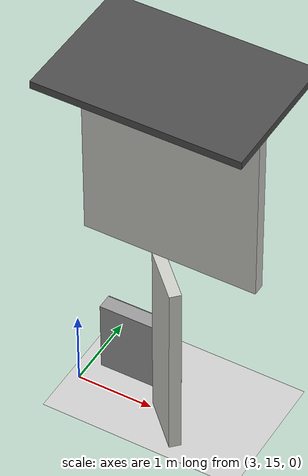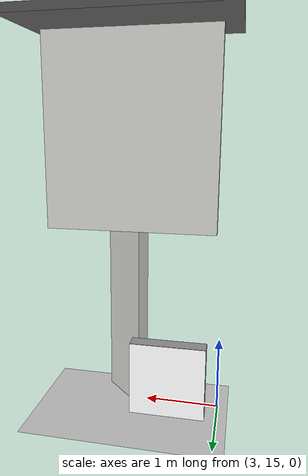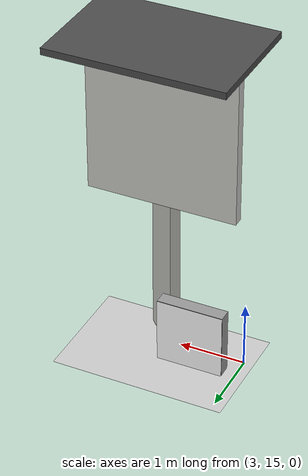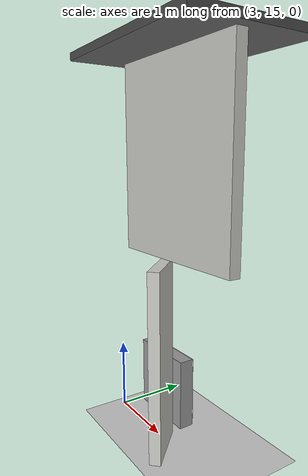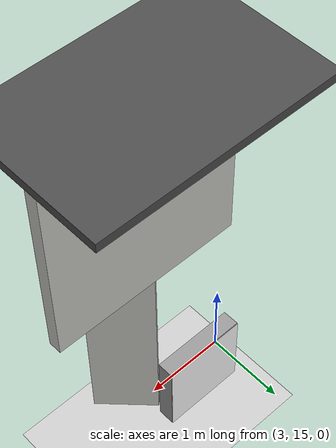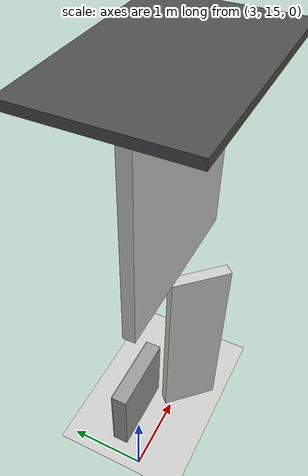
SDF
<sdf version="1.6">
 <world name="default">
  <model name="ground_plane">
   <static>1</static>
   <link name="link">
    <collision name="collision">
     <geometry><plane><normal>0 0 1</normal><size>100 100</size></plane></geometry>
     <surface>
      <contact><collide_bitmask>65535</collide_bitmask></contact>
      <friction><ode><mu>100</mu><mu2>50</mu2></ode></friction>
     </surface>
    </collision>
    <visual name="visual">
     <cast_shadows>0</cast_shadows>
     <geometry><plane><normal>0 0 1</normal><size>100 100</size></plane></geometry>
     <material>
      <script><uri>file://media/materials/scripts/gazebo.material</uri><name>Gazebo/Grey</name></script>
     </material>
    </visual>
   </link>
  </model>
  <model name="asphalt_plane">
   <static>1</static>
   <link name="link">
    <collision name="collision"><geometry><box><size>18.0246 12.9845 0.1</size></box></geometry></collision>
    <visual name="visual">
     <cast_shadows>0</cast_shadows>
     <geometry><box><size>18.0246 12.9845 0.1</size></box></geometry>
     <material>
      <script>
       <uri>model://asphalt_plane/materials/scripts</uri>
       <uri>model://asphalt_plane/materials/textures</uri>
       <name>vrc/asphalt</name>
      </script>
     </material>
    </visual>
   </link>
   <pose>0.009253 12.617 5.05625 0 -0 0</pose>
  </model>
  <model name="Indoor_Scenario1">
   <pose>0.016123 12.6195 0 0 -0 0</pose>
   <link name="Wall_48">
    <collision name="Wall_48_Collision">
     <geometry><box><size>0.75 0.15 2.5</size></box></geometry>
     <pose>0 0 1.25 0 -0 0</pose>
    </collision>
    <visual name="Wall_48_Visual">
     <pose>0 0 1.25 0 -0 0</pose>
     <geometry><box><size>0.75 0.15 2.5</size></box></geometry>
     <material>
      <script><uri>file://media/materials/scripts/gazebo.material</uri><name>Gazebo/CeilingTiled</name></script>
      <ambient>1 1 1 1</ambient>
     </material>
     <meta><layer>0</layer></meta>
    </visual>
    <pose>4.28416 2.24221 0 0 -0 2.35619</pose>
   </link>
   <link name="Wall_93">
    <collision name="Wall_93_Collision">
     <geometry><box><size>2.25 0.15 2.5</size></box></geometry>
     <pose>0 0 1.25 0 -0 0</pose>
    </collision>
    <visual name="Wall_93_Visual">
     <pose>0 0 1.25 0 -0 0</pose>
     <geometry><box><size>2.25 0.15 2.5</size></box></geometry>
     <material>
      <script><uri>file://media/materials/scripts/gazebo.material</uri><name>Gazebo/CeilingTiled</name></script>
      <ambient>1 1 1 1</ambient>
     </material>
     <meta><layer>1</layer></meta>
    </visual>
    <pose>4.18851 2.53292 2.5 0 -0 0</pose>
   </link>
   <static>1</static>
  </model>
  <model name="marker38_box">
   <link name="marker">
    <inertial>
     <mass>0.1</mass>
     <inertia><ixx>0</ixx><ixy>0</ixy><ixz>0</ixz><iyy>0</iyy><iyz>0</iyz><izz>0</izz></inertia>
    </inertial>
    <self_collide>1</self_collide>
    <pose>0 0 0.25 0 -0 0</pose>
    <visual name="visual">
     <geometry><box><size>1 0.001 1</size></box></geometry>
     <material>
      <script>
       <uri>/root/model_editor_models/marker38/material/scripts</uri>
       <uri>/root/model_editor_models/marker38/material/textures</uri>
       <name>Aruco/marker38</name>
      </script>
      <shader type="pixel"><normal_map>__default__</normal_map></shader>
      <emissive>0 0 0 1</emissive>
      <ambient>1 1 1 1</ambient>
      <diffuse>1 1 1 1</diffuse>
      <specular>0 0 0 1</specular>
     </material>
    </visual>
    <collision name="collision">
     <geometry><box><size>1 0.001 1</size></box></geometry>
     <surface>
      <friction>
       <ode><mu>1</mu><mu2>1</mu2><fdir1>0 0 0</fdir1><slip1>0</slip1><slip2>0</slip2></ode>
       <torsional>
        <coefficient>1</coefficient>
        <patch_radius>0</patch_radius>
        <surface_radius>0</surface_radius>
        <use_patch_radius>1</use_patch_radius>
        <ode><slip>0</slip></ode>
       </torsional>
      </friction>
      <bounce><restitution_coefficient>0</restitution_coefficient><threshold>1e+06</threshold></bounce>
      <contact>
       <collide_without_contact>0</collide_without_contact>
       <collide_without_contact_bitmask>1</collide_without_contact_bitmask>
       <collide_bitmask>1</collide_bitmask>
       <ode>
        <soft_cfm>0</soft_cfm>
        <soft_erp>0.2</soft_erp>
        <kp>1e+13</kp>
        <kd>1</kd>
        <max_vel>0.01</max_vel>
        <min_depth>0</min_depth>
       </ode>
       <bullet>
        <split_impulse>1</split_impulse>
        <split_impulse_penetration_threshold>-0.01</split_impulse_penetration_threshold>
        <soft_cfm>0</soft_cfm>
        <soft_erp>0.2</soft_erp>
        <kp>1e+13</kp>
        <kd>1</kd>
       </bullet>
      </contact>
     </surface>
    </collision>
   </link>
   <link name="link_1">
    <inertial>
     <mass>1</mass>
     <inertia>
      <ixx>0.166667</ixx>
      <ixy>0</ixy>
      <ixz>0</ixz>
      <iyy>0.166667</iyy>
      <iyz>0</iyz>
      <izz>0.166667</izz>
     </inertia>
    </inertial>
    <pose>0 0.11 0.25 0 -0 0</pose>
    <visual name="visual">
     <geometry><box><size>1 0.2 1</size></box></geometry>
     <material>
      <lighting>1</lighting>
      <script><uri>file://media/materials/scripts/gazebo.material</uri><name>Gazebo/Grey</name></script>
      <shader type="pixel"><normal_map>__default__</normal_map></shader>
      <emissive>0 0 0 1</emissive>
      <ambient>0.3 0.3 0.3 1</ambient>
      <diffuse>0.7 0.7 0.7 1</diffuse>
      <specular>0.01 0.01 0.01 1</specular>
     </material>
    </visual>
    <collision name="collision">
     <geometry><box><size>1 0.2 1</size></box></geometry>
     <surface>
      <friction>
       <ode><mu>1</mu><mu2>1</mu2><fdir1>0 0 0</fdir1><slip1>0</slip1><slip2>0</slip2></ode>
       <torsional>
        <coefficient>1</coefficient>
        <patch_radius>0</patch_radius>
        <surface_radius>0</surface_radius>
        <use_patch_radius>1</use_patch_radius>
        <ode><slip>0</slip></ode>
       </torsional>
      </friction>
      <bounce><restitution_coefficient>0</restitution_coefficient><threshold>1e+06</threshold></bounce>
      <contact>
       <collide_without_contact>0</collide_without_contact>
       <collide_without_contact_bitmask>1</collide_without_contact_bitmask>
       <collide_bitmask>1</collide_bitmask>
       <ode>
        <soft_cfm>0</soft_cfm>
        <soft_erp>0.2</soft_erp>
        <kp>1e+13</kp>
        <kd>1</kd>
        <max_vel>0.01</max_vel>
        <min_depth>0</min_depth>
       </ode>
       <bullet>
        <split_impulse>1</split_impulse>
        <split_impulse_penetration_threshold>-0.01</split_impulse_penetration_threshold>
        <soft_cfm>0</soft_cfm>
        <soft_erp>0.2</soft_erp>
        <kp>1e+13</kp>
        <kd>1</kd>
       </bullet>
      </contact>
     </surface>
    </collision>
   </link>
   <joint name="link_1_JOINT_3" type="fixed">
    <parent>link_1</parent>
    <child>marker</child>
    <physics>
     <ode><limit><cfm>0</cfm><erp>0.2</erp></limit><suspension><cfm>0</cfm><erp>0.2</erp></suspension></ode>
    </physics>
   </joint>
   <static>0</static>
   <pose>3.64838 15.4768 0.3 0 1e-06 -3.13591</pose>
  </model>
 </world>
</sdf>
